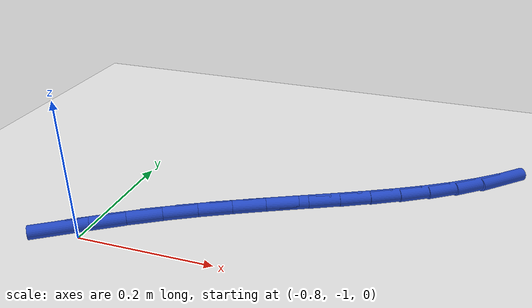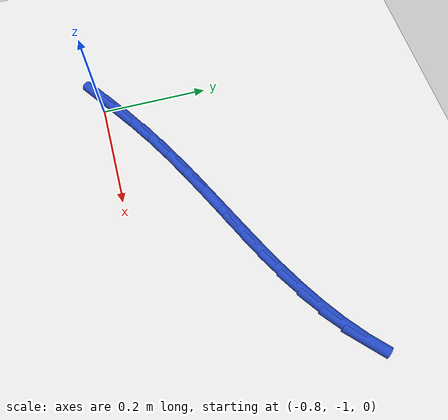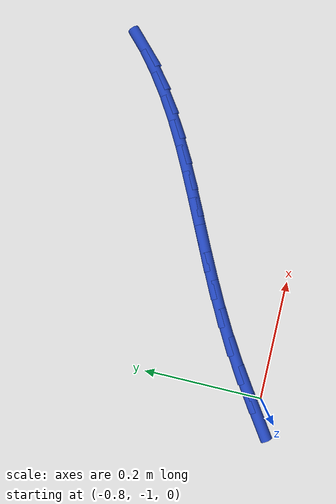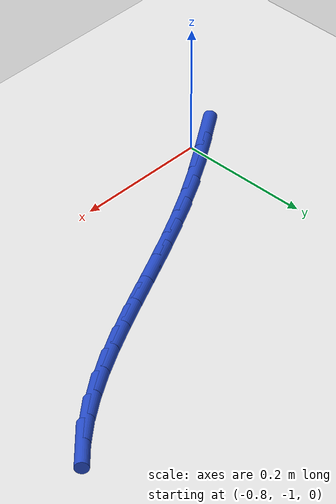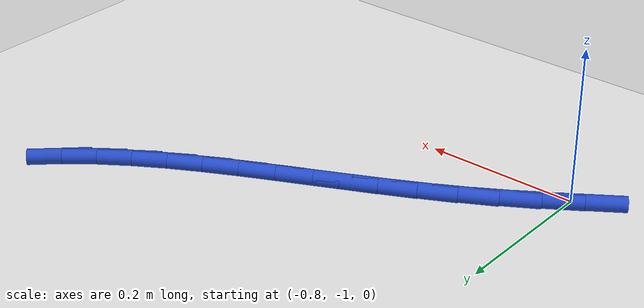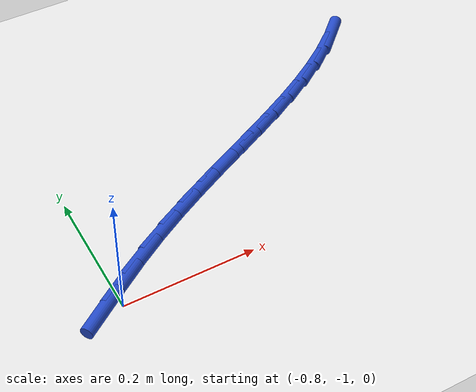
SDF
<sdf version="1.6">
 <world name="default">
  <model name="ground_plane">
   <static>1</static>
   <link name="link">
    <collision name="collision">
     <geometry><plane><normal>0 0 1</normal><size>100 100</size></plane></geometry>
     <surface><friction><ode><mu>100</mu><mu2>50</mu2></ode></friction></surface>
    </collision>
    <visual name="visual">
     <cast_shadows>0</cast_shadows>
     <geometry><plane><normal>0 0 1</normal><size>100 100</size></plane></geometry>
     <material>
      <script><uri>file://media/materials/scripts/gazebo.material</uri><name>Gazebo/WhiteGlow</name></script>
     </material>
    </visual>
   </link>
  </model>
  <model name="line">
   <link name="link_150">
    <pose>-0.8294298035469779 -1.0002744918327602 0.01 0 1.57 0.6017016888685529</pose>
    <collision name="collision">
     <geometry><cylinder><radius>0.01</radius><length>0.08</length></cylinder></geometry>
    </collision>
    <visual name="visual">
     <material>
      <script><name>Gazebo/Blue</name><uri>file://media/materials/scripts/gazebo.material</uri></script>
     </material>
     <geometry><cylinder><radius>0.01</radius><length>0.08</length></cylinder></geometry>
    </visual>
   </link>
   <link name="link_151">
    <pose>-0.7880682827480546 -0.971874105076633 0.01 0 1.57 0.5861764820842058</pose>
    <collision name="collision">
     <geometry><cylinder><radius>0.01</radius><length>0.08</length></cylinder></geometry>
    </collision>
    <visual name="visual">
     <material>
      <script><name>Gazebo/Blue</name><uri>file://media/materials/scripts/gazebo.material</uri></script>
     </material>
     <geometry><cylinder><radius>0.01</radius><length>0.08</length></cylinder></geometry>
    </visual>
   </link>
   <link name="link_152">
    <pose>-0.7463310083274329 -0.9441592134234217 0.01 0 1.57 0.5497647600947222</pose>
    <collision name="collision">
     <geometry><cylinder><radius>0.01</radius><length>0.08</length></cylinder></geometry>
    </collision>
    <visual name="visual">
     <material>
      <script><name>Gazebo/Blue</name><uri>file://media/materials/scripts/gazebo.material</uri></script>
     </material>
     <geometry><cylinder><radius>0.01</radius><length>0.08</length></cylinder></geometry>
    </visual>
   </link>
   <link name="link_153">
    <pose>-0.7040828455539155 -0.9182703169022128 0.01 0 1.57 0.5109105273868692</pose>
    <collision name="collision">
     <geometry><cylinder><radius>0.01</radius><length>0.08</length></cylinder></geometry>
    </collision>
    <visual name="visual">
     <material>
      <script><name>Gazebo/Blue</name><uri>file://media/materials/scripts/gazebo.material</uri></script>
     </material>
     <geometry><cylinder><radius>0.01</radius><length>0.08</length></cylinder></geometry>
    </visual>
   </link>
   <link name="link_154">
    <pose>-0.6614204413301453 -0.8943557039820462 0.01 0 1.57 0.4810116430435028</pose>
    <collision name="collision">
     <geometry><cylinder><radius>0.01</radius><length>0.08</length></cylinder></geometry>
    </collision>
    <visual name="visual">
     <material>
      <script><name>Gazebo/Blue</name><uri>file://media/materials/scripts/gazebo.material</uri></script>
     </material>
     <geometry><cylinder><radius>0.01</radius><length>0.08</length></cylinder></geometry>
    </visual>
   </link>
   <link name="link_155">
    <pose>-0.6185735149597339 -0.8719940063719608 0.01 0 1.57 0.4605935213971763</pose>
    <collision name="collision">
     <geometry><cylinder><radius>0.01</radius><length>0.08</length></cylinder></geometry>
    </collision>
    <visual name="visual">
     <material>
      <script><name>Gazebo/Blue</name><uri>file://media/materials/scripts/gazebo.material</uri></script>
     </material>
     <geometry><cylinder><radius>0.01</radius><length>0.08</length></cylinder></geometry>
    </visual>
   </link>
   <link name="link_156">
    <pose>-0.5757733688263782 -0.8507570789266918 0.01 0 1.57 0.44999626737251097</pose>
    <collision name="collision">
     <geometry><cylinder><radius>0.01</radius><length>0.08</length></cylinder></geometry>
    </collision>
    <visual name="visual">
     <material>
      <script><name>Gazebo/Blue</name><uri>file://media/materials/scripts/gazebo.material</uri></script>
     </material>
     <geometry><cylinder><radius>0.01</radius><length>0.08</length></cylinder></geometry>
    </visual>
   </link>
   <link name="link_157">
    <pose>-0.5332513053137751 -0.8302167765009747 0.01 0 1.57 0.4495634671657701</pose>
    <collision name="collision">
     <geometry><cylinder><radius>0.01</radius><length>0.08</length></cylinder></geometry>
    </collision>
    <visual name="visual">
     <material>
      <script><name>Gazebo/Blue</name><uri>file://media/materials/scripts/gazebo.material</uri></script>
     </material>
     <geometry><cylinder><radius>0.01</radius><length>0.08</length></cylinder></geometry>
    </visual>
   </link>
   <link name="link_158">
    <pose>-0.49123862680562164 -0.8099449539495448 0.01 0 1.57 0.45967565991415726</pose>
    <collision name="collision">
     <geometry><cylinder><radius>0.01</radius><length>0.08</length></cylinder></geometry>
    </collision>
    <visual name="visual">
     <material>
      <script><name>Gazebo/Blue</name><uri>file://media/materials/scripts/gazebo.material</uri></script>
     </material>
     <geometry><cylinder><radius>0.01</radius><length>0.08</length></cylinder></geometry>
    </visual>
   </link>
   <link name="link_159">
    <pose>-0.4499666356856141 -0.7895134661271369 0.01 0 1.57 0.48075484655789996</pose>
    <collision name="collision">
     <geometry><cylinder><radius>0.01</radius><length>0.08</length></cylinder></geometry>
    </collision>
    <visual name="visual">
     <material>
      <script><name>Gazebo/Blue</name><uri>file://media/materials/scripts/gazebo.material</uri></script>
     </material>
     <geometry><cylinder><radius>0.01</radius><length>0.08</length></cylinder></geometry>
    </visual>
   </link>
   <link name="link_160">
    <pose>-0.40966663433745154 -0.7684941678884879 0.01 0 1.57 0.5132314407510125</pose>
    <collision name="collision">
     <geometry><cylinder><radius>0.01</radius><length>0.08</length></cylinder></geometry>
    </collision>
    <visual name="visual">
     <material>
      <script><name>Gazebo/Blue</name><uri>file://media/materials/scripts/gazebo.material</uri></script>
     </material>
     <geometry><cylinder><radius>0.01</radius><length>0.08</length></cylinder></geometry>
    </visual>
   </link>
   <link name="link_161">
    <pose>-0.3705699251448299 -0.7464589140883321 0.01 0 1.57 0.5574630741763185</pose>
    <collision name="collision">
     <geometry><cylinder><radius>0.01</radius><length>0.08</length></cylinder></geometry>
    </collision>
    <visual name="visual">
     <material>
      <script><name>Gazebo/Blue</name><uri>file://media/materials/scripts/gazebo.material</uri></script>
     </material>
     <geometry><cylinder><radius>0.01</radius><length>0.08</length></cylinder></geometry>
    </visual>
   </link>
   <link name="link_162">
    <pose>-0.33290781049144663 -0.7229795595814057 0.01 0 1.57 0.613596094902586</pose>
    <collision name="collision">
     <geometry><cylinder><radius>0.01</radius><length>0.08</length></cylinder></geometry>
    </collision>
    <visual name="visual">
     <material>
      <script><name>Gazebo/Blue</name><uri>file://media/materials/scripts/gazebo.material</uri></script>
     </material>
     <geometry><cylinder><radius>0.01</radius><length>0.08</length></cylinder></geometry>
    </visual>
   </link>
   <link name="link_163">
    <pose>-0.29691159276099865 -0.6976279592224435 0.01 0 1.57 0.6813714491554316</pose>
    <collision name="collision">
     <geometry><cylinder><radius>0.01</radius><length>0.08</length></cylinder></geometry>
    </collision>
    <visual name="visual">
     <material>
      <script><name>Gazebo/Blue</name><uri>file://media/materials/scripts/gazebo.material</uri></script>
     </material>
     <geometry><cylinder><radius>0.01</radius><length>0.08</length></cylinder></geometry>
    </visual>
   </link>
   <link name="link_164">
    <pose>-0.26281257433718314 -0.6699759678661812 0.01 0 1.57 0.7599000427099167</pose>
    <collision name="collision">
     <geometry><cylinder><radius>0.01</radius><length>0.08</length></cylinder></geometry>
    </collision>
    <visual name="visual">
     <material>
      <script><name>Gazebo/Blue</name><uri>file://media/materials/scripts/gazebo.material</uri></script>
     </material>
     <geometry><cylinder><radius>0.01</radius><length>0.08</length></cylinder></geometry>
    </visual>
   </link>
  </model>
 </world>
</sdf>
